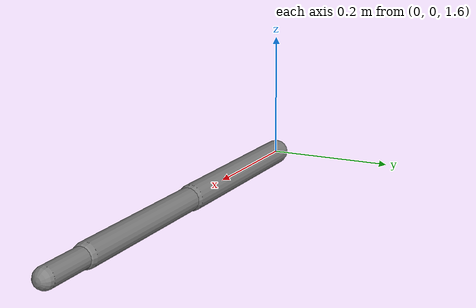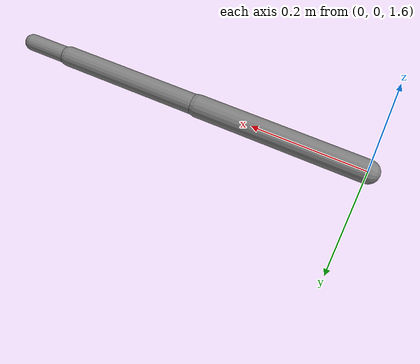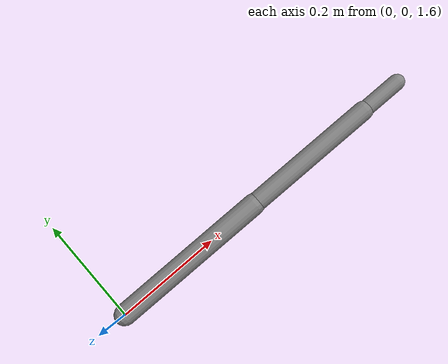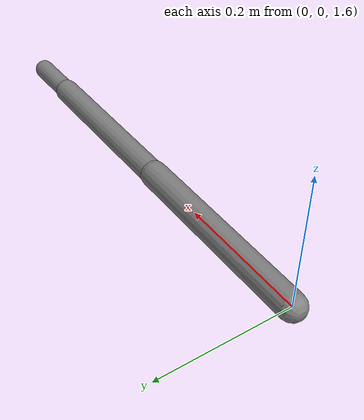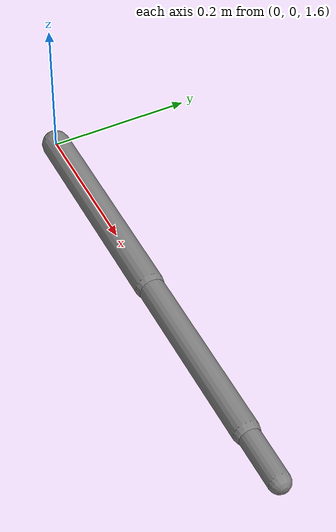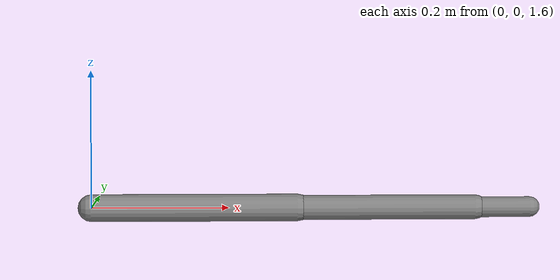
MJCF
<?xml version="1.0" encoding="utf-8"?>
<mujoco model="dart_robot_3link_planar_TALL_SPEC">
  <compiler angle="degree" inertiafromgeom="true"/>

  <option timestep="0.001" gravity="0 0 -9.81"/>

  <default>
    <joint limited="true" damping="0.1"/>
    <geom type="capsule" condim="1" friction="0.6 0.005 0.0001"/>
  </default>

  <asset/>

  <worldbody>
    <!-- Higher pivot height to approximate a taller thrower -->
    <body name="shoulder_mount" pos="0 0 1.60">
      <site name="shoulder_origin" pos="0 0 0" size="0.01"/>
      <body name="upper_arm" pos="0 0 0">
        <joint name="shoulder" type="hinge" axis="0 1 0" range="-60 180"/>
        <geom name="upper_arm_geom" fromto="0 0 0 0.30 0 0" size="0.02" mass="2.1"/>
        <body name="forearm" pos="0.30 0 0">
          <joint name="elbow" type="hinge" axis="0 1 0" range="-145 0"/>
          <geom name="forearm_geom" fromto="0 0 0 0.26 0 0" size="0.018" mass="1.2"/>
          <body name="hand" pos="0.26 0 0">
            <joint name="wrist" type="hinge" axis="0 1 0" range="-70 70"/>
            <geom name="hand_geom" fromto="0 0 0 0.08 0 0" size="0.015" mass="0.4"/>
            <site name="release_site" pos="0.08 0 0" size="0.005" rgba="1 0 0 0.5"/>
          </body>
        </body>
      </body>
    </body>
  </worldbody>

  <actuator>
    <motor name="tau_shoulder" joint="shoulder" gear="1" ctrllimited="true" ctrlrange="-100 100"/>
    <motor name="tau_elbow" joint="elbow" gear="1" ctrllimited="true" ctrlrange="-70 70"/>
    <motor name="tau_wrist" joint="wrist" gear="1" ctrllimited="true" ctrlrange="-20 20"/>
  </actuator>

  <keyframe>
    <key name="cocked" qpos="-0.9599 -1.5708 -0.3491"/>
  </keyframe>
</mujoco>
